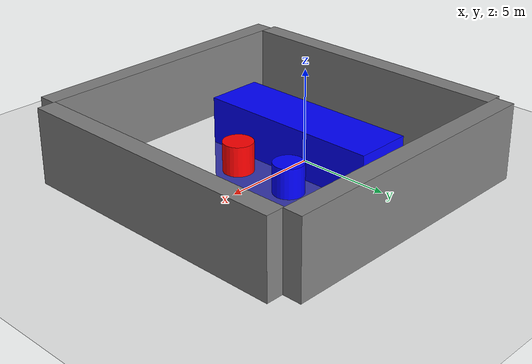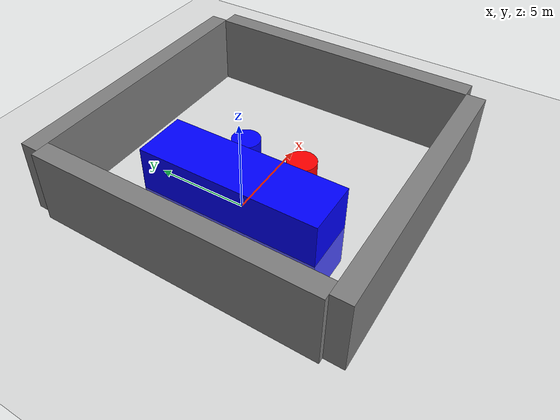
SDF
<?xml version="1.0" ?>
<sdf version='1.10'>
  <world name='empty'>
    <physics name='1ms' type='ignored'>
      <max_step_size>0.001</max_step_size>
      <real_time_factor>1</real_time_factor>
      <real_time_update_rate>1000</real_time_update_rate>
    </physics>

    <plugin name='gz::sim::systems::Physics' filename='gz-sim-physics-system'/>
    <plugin name='gz::sim::systems::UserCommands' filename='gz-sim-user-commands-system'/>
    <plugin name='gz::sim::systems::SceneBroadcaster' filename='gz-sim-scene-broadcaster-system'/>
    <plugin name='gz::sim::systems::Contact' filename='gz-sim-contact-system'/>
    <plugin
      filename="gz-sim-sensors-system"
      name="gz::sim::systems::Sensors">
      <render_engine>ogre2</render_engine>
    </plugin>

    <gravity>0 0 -9.8000000000000007</gravity>
    <magnetic_field>5.5644999999999998e-06 2.2875799999999999e-05 -4.2388400000000002e-05</magnetic_field>
    <atmosphere type='adiabatic'/>
    <scene>
      <ambient>0.400000006 0.400000006 0.400000006 1</ambient>
      <background>0.699999988 0.699999988 0.699999988 1</background>
      <shadows>true</shadows>
    </scene>
    <model name='ground_plane'>
      <static>true</static>
      <link name='link'>
        <collision name='collision'>
          <geometry>
            <plane>
              <normal>0 0 1</normal>
              <size>100 100</size>
            </plane>
          </geometry>
          <surface>
            <friction>
              <ode/>
            </friction>
            <bounce/>
            <contact/>
          </surface>
        </collision>
        <visual name='visual'>
          <geometry>
            <plane>
              <normal>0 0 1</normal>
              <size>100 100</size>
            </plane>
          </geometry>
          <material>
            <ambient>0.800000012 0.800000012 0.800000012 1</ambient>
            <diffuse>0.800000012 0.800000012 0.800000012 1</diffuse>
            <specular>0.800000012 0.800000012 0.800000012 1</specular>
          </material>
        </visual>
        <pose>0 0 0 0 0 0</pose>
        <inertial>
          <pose>0 0 0 0 0 0</pose>
          <mass>1</mass>
          <inertia>
            <ixx>1</ixx>
            <ixy>0</ixy>
            <ixz>0</ixz>
            <iyy>1</iyy>
            <iyz>0</iyz>
            <izz>1</izz>
          </inertia>
        </inertial>
        <enable_wind>false</enable_wind>
      </link>
      <pose>0 0 0 0 0 0</pose>
      <self_collide>false</self_collide>
    </model>
    <light name='sun' type='directional'>
      <pose>0 0 10 0 0 0</pose>
      <cast_shadows>true</cast_shadows>
      <intensity>1</intensity>
      <direction>-0.5 0.10000000000000001 -0.90000000000000002</direction>
      <diffuse>0.800000012 0.800000012 0.800000012 1</diffuse>
      <specular>0.200000003 0.200000003 0.200000003 1</specular>
      <attenuation>
        <range>1000</range>
        <linear>0.01</linear>
        <constant>0.90000000000000002</constant>
        <quadratic>0.001</quadratic>
      </attenuation>
      <spot>
        <inner_angle>0</inner_angle>
        <outer_angle>0</outer_angle>
        <falloff>0</falloff>
      </spot>
    </light>

    <model name = 'cilindro_azul'>
    <!-- Cilindro Azul -->
    <link name='cilindro_azul'>
      <pose>3 1.7 0.8 0 0 0</pose>
      <collision name='collision_cilindro_azul'>
        <geometry>
          <cylinder>
            <radius>0.8</radius>
            <length>1.6</length>
          </cylinder>
        </geometry>
      </collision>
      <visual name='visual_cilindro_azul'>
        <geometry>
          <cylinder>
            <radius>0.8</radius>
            <length>1.6</length>
          </cylinder>
        </geometry>
        <material>
          <ambient>0 0 1 1</ambient>
          <diffuse>0 0 1 1</diffuse>
          <specular>0.3 0.3 0.3 1</specular>
        </material>
      </visual>
    </link>
    </model>

    <!-- Cenário -->
    <include>
      <uri>file://../models/Cenarios/Cenario2.sdf</uri>
    </include>

    <!-- Robô - Referencia o modelo em /models/Robot/model.sdf -->
    <include>
      <uri>file://../models/Robot/model.sdf</uri>

      <!-- cenario 2 -->
      <pose>0.0 0.0 0.0 0 0 0.0</pose>
    </include>

  </world>
</sdf>

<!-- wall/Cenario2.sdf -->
<sdf version='1.10'>
  <model name="Cenario2">
    <static>true</static>
    <pose>0 0 0 0 0 0</pose>

    <!-- Cilindro Vermelho -->
    <link name='cilindro_vermelho'>
      <pose>3 -1.7 0.8 0 0 0</pose>
      <collision name='collision_cilindro_vermelho'>
        <geometry>
          <cylinder>
            <radius>0.8</radius>
            <length>1.6</length>
          </cylinder>
        </geometry>
      </collision>
      <visual name='visual_cilindro_vermelho'>
        <geometry>
          <cylinder>
            <radius>0.8</radius>
            <length>1.6</length>
          </cylinder>
        </geometry>
        <material>
          <ambient>1 0 0 1</ambient>
          <diffuse>1 0 0 1</diffuse>
          <specular>0.3 0.3 0.3 1</specular>
        </material>
      </visual>
    </link>

    <!-- Cilindro Azul -->
    <link name='cilindro_azul'>
      <pose>3 1.7 0.8 0 0 0</pose>
      <collision name='collision_cilindro_azul'>
        <geometry>
          <cylinder>
            <radius>0.8</radius>
            <length>1.6</length>
          </cylinder>
        </geometry>
      </collision>
      <visual name='visual_cilindro_azul'>
        <geometry>
          <cylinder>
            <radius>0.8</radius>
            <length>1.6</length>
          </cylinder>
        </geometry>
        <material>
          <ambient>0 0 1 1</ambient>
          <diffuse>0 0 1 1</diffuse>
          <specular>0.3 0.3 0.3 1</specular>
        </material>
      </visual>
    </link>

    <!-- Parede Norte -->
    <link name='parede_norte'>
      <pose>2.1 8.0 2 0 0 0</pose>
      <collision name='collision_parede_norte'>
        <geometry>
          <box>
            <size>15.0 1 4</size>
          </box>
        </geometry>
      </collision>
      <visual name='visual_parede_norte'>
        <geometry>
          <box>
            <size>15.0 1 4</size>
          </box>
        </geometry>
        <material>
          <ambient>0.5 0.5 0.5 1</ambient>
          <diffuse>0.5 0.5 0.5 1</diffuse>
          <specular>0.2 0.2 0.2 1</specular>
        </material>
      </visual>
    </link>

    <!-- Parede Sul -->
    <link name='parede_sul'>
      <pose>2.1 -8.0 2 0 0 0</pose>
      <collision name='collision_parede_sul'>
        <geometry>
          <box>
            <size>15.0 1 4</size>
          </box>
        </geometry>
      </collision>
      <visual name='visual_parede_sul'>
        <geometry>
          <box>
            <size>15.0 1 4</size>
          </box>
        </geometry>
        <material>
          <ambient>0.5 0.5 0.5 1</ambient>
          <diffuse>0.5 0.5 0.5 1</diffuse>
          <specular>0.2 0.2 0.2 1</specular>
        </material>
      </visual>
    </link>

    <!-- Parede Leste -->
    <link name='parede_leste'>
      <pose>10.0 0 2 0 0 0</pose>
      <collision name='collision_parede_leste'>
        <geometry>
          <box>
            <size>1 15.0 4</size>
          </box>
        </geometry>
      </collision>
      <visual name='visual_parede_leste'>
        <geometry>
          <box>
            <size>1 15.0 4</size>
          </box>
        </geometry>
        <material>
          <ambient>0.5 0.5 0.5 1</ambient>
          <diffuse>0.5 0.5 0.5 1</diffuse>
          <specular>0.2 0.2 0.2 1</specular>
        </material>
      </visual>
    </link>

    <!-- Parede Oeste -->
    <link name='parede_oeste'>
      <pose>-5.2 0 2 0 0 0</pose>
      <collision name='collision_parede_oeste'>
        <geometry>
          <box>
            <size>1 15.0 4</size>
          </box>
        </geometry>
      </collision>
      <visual name='visual_parede_oeste'>
        <geometry>
          <box>
            <size>1 15.0 4</size>
          </box>
        </geometry>
        <material>
          <ambient>0.5 0.5 0.5 1</ambient>
          <diffuse>0.5 0.5 0.5 1</diffuse>
          <specular>0.2 0.2 0.2 1</specular>
        </material>
      </visual>
    </link>

  </model>
</sdf>

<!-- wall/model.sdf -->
<sdf version='1.10'>
<model name='wall'>
      <static>true</static>
      <pose>3.9 0 1.0 0 0 0</pose><!--pose relative to the world: 3.9m à frente, altura 1m (metade da altura da parede de 2m)-->
      <link name='box'>
          <visual name='visual'>
              <geometry>
                  <box>
                      <size>3 10.0 5.0</size>
                  </box>
              </geometry>
              <!--let's add color to our link-->
              <material>
                  <ambient>0.0 0.0 1.0 1</ambient>
                  <diffuse>0.0 0.0 1.0 1</diffuse>
                  <specular>0.0 0.0 1.0 1</specular>
              </material>
          </visual>
          <collision name='collision'>
              <geometry>
                  <box>
                      <size>3 10.0 5.0</size>
                  </box>
              </geometry>
          </collision>
      </link>
  </model>
</sdf>
